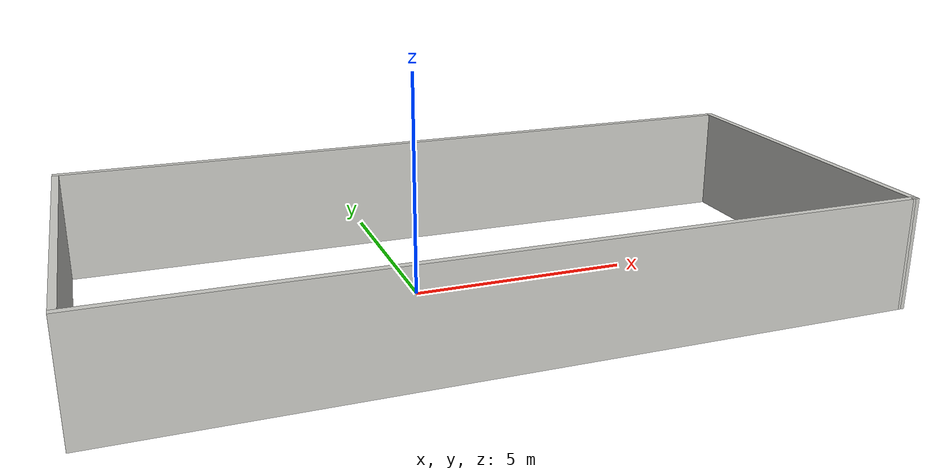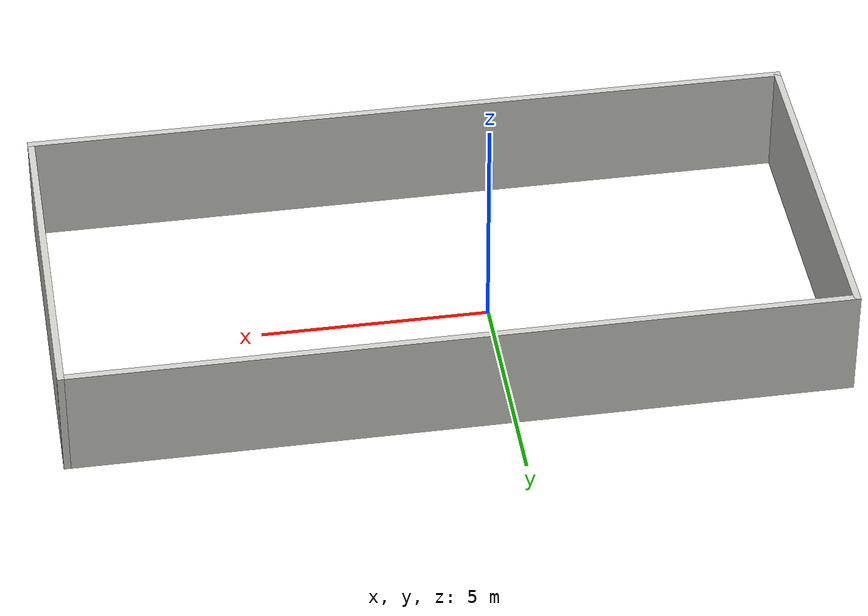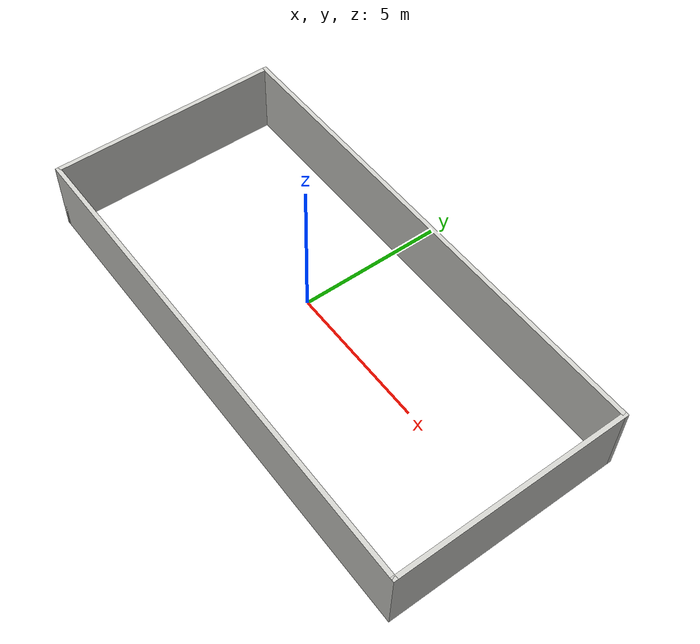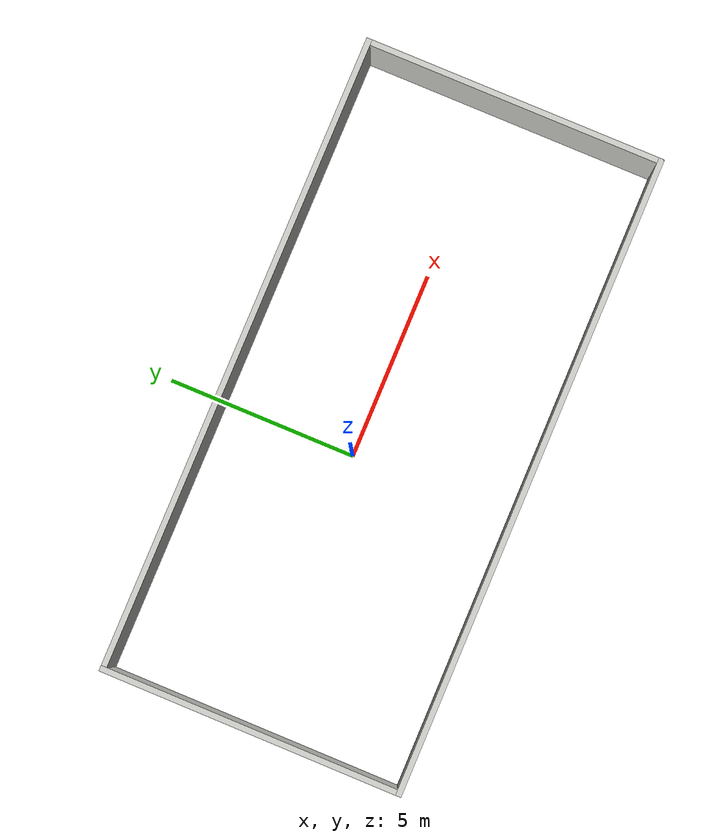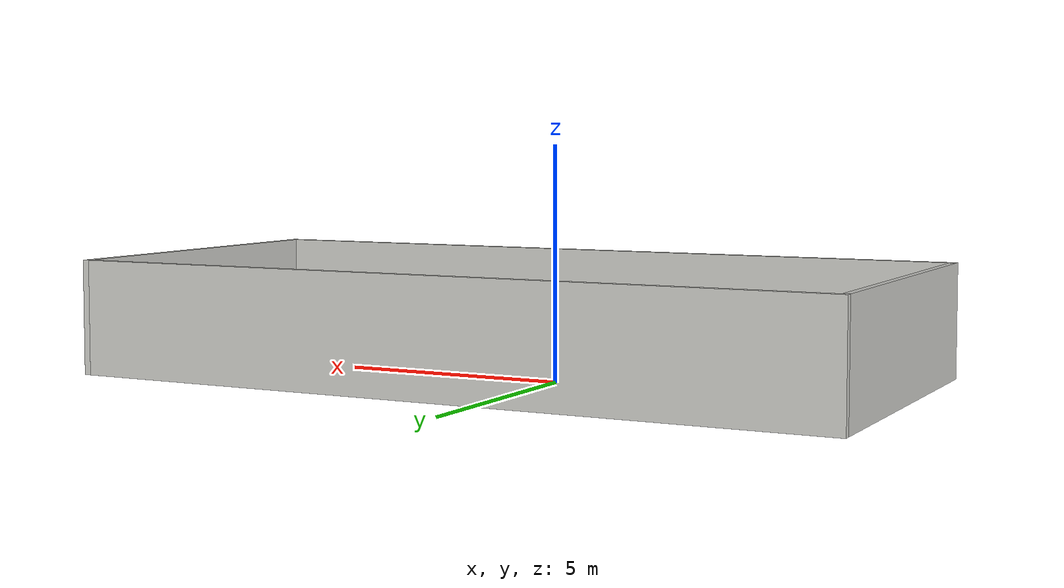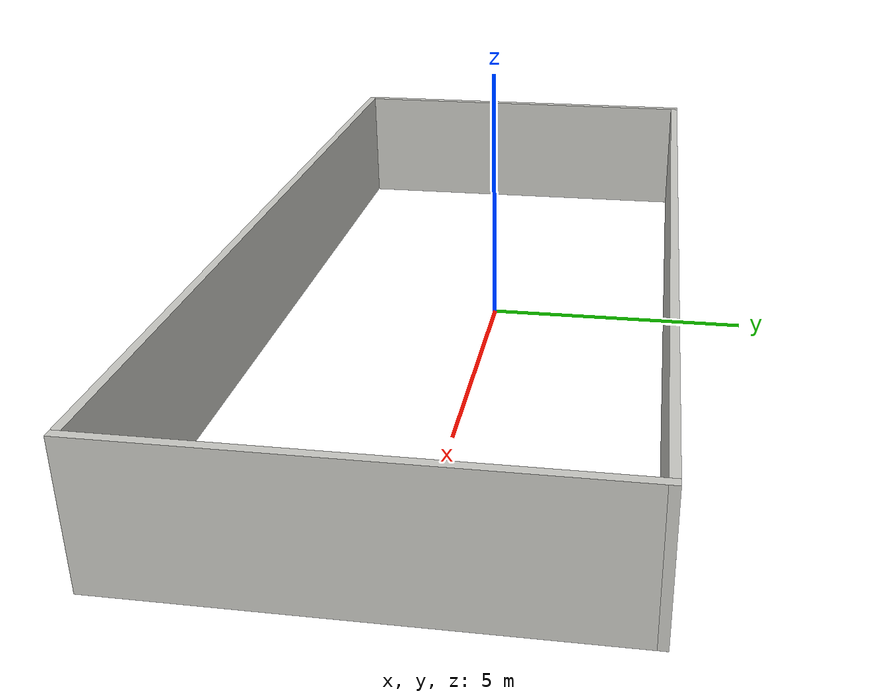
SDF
<?xml version='1.0'?>
<sdf version='1.7'>
  <model name='wall1'>
    <pose>1.12953 -0.378919 0 0 -0 0</pose>
    <link name='Wall_2'>
      <collision name='Wall_2_Collision'>
        <geometry>
          <box>
            <size>17 0.15 2.5</size>
          </box>
        </geometry>
        <pose>0 0 1.25 0 -0 0</pose>
      </collision>
      <visual name='Wall_2_Visual'>
        <pose>0 0 1.25 0 -0 0</pose>
        <geometry>
          <box>
            <size>17 0.15 2.5</size>
          </box>
        </geometry>
        <material>
          <script>
            <uri>file://media/materials/scripts/gazebo.material</uri>
            <name>Gazebo/CeilingTiled</name>
          </script>
          <ambient>1 1 1 1</ambient>
        </material>
        <meta>
          <layer>0</layer>
        </meta>
      </visual>
      <pose>-0 -3.925 0 0 -0 0</pose>
    </link>
    <link name='Wall_3'>
      <collision name='Wall_3_Collision'>
        <geometry>
          <box>
            <size>8 0.15 2.5</size>
          </box>
        </geometry>
        <pose>0 0 1.25 0 -0 0</pose>
      </collision>
      <visual name='Wall_3_Visual'>
        <pose>0 0 1.25 0 -0 0</pose>
        <geometry>
          <box>
            <size>8 0.15 2.5</size>
          </box>
        </geometry>
        <material>
          <script>
            <uri>file://media/materials/scripts/gazebo.material</uri>
            <name>Gazebo/CeilingTiled</name>
          </script>
          <ambient>1 1 1 1</ambient>
        </material>
        <meta>
          <layer>0</layer>
        </meta>
      </visual>
      <pose>8.425 -0 0 0 -0 1.5708</pose>
    </link>
    <link name='Wall_4'>
      <collision name='Wall_4_Collision'>
        <geometry>
          <box>
            <size>17 0.15 2.5</size>
          </box>
        </geometry>
        <pose>0 0 1.25 0 -0 0</pose>
      </collision>
      <visual name='Wall_4_Visual'>
        <pose>0 0 1.25 0 -0 0</pose>
        <geometry>
          <box>
            <size>17 0.15 2.5</size>
          </box>
        </geometry>
        <material>
          <script>
            <uri>file://media/materials/scripts/gazebo.material</uri>
            <name>Gazebo/CeilingTiled</name>
          </script>
          <ambient>1 1 1 1</ambient>
        </material>
        <meta>
          <layer>0</layer>
        </meta>
      </visual>
      <pose>-0 3.925 0 0 -0 3.14159</pose>
    </link>
    <link name='Wall_5'>
      <collision name='Wall_5_Collision'>
        <geometry>
          <box>
            <size>8 0.15 2.5</size>
          </box>
        </geometry>
        <pose>0 0 1.25 0 -0 0</pose>
      </collision>
      <visual name='Wall_5_Visual'>
        <pose>0 0 1.25 0 -0 0</pose>
        <geometry>
          <box>
            <size>8 0.15 2.5</size>
          </box>
        </geometry>
        <material>
          <script>
            <uri>file://media/materials/scripts/gazebo.material</uri>
            <name>Gazebo/CeilingTiled</name>
          </script>
          <ambient>1 1 1 1</ambient>
        </material>
        <meta>
          <layer>0</layer>
        </meta>
      </visual>
      <pose>-8.425 -0 0 0 -0 -1.5708</pose>
    </link>
    <static>1</static>
  </model>
</sdf>
